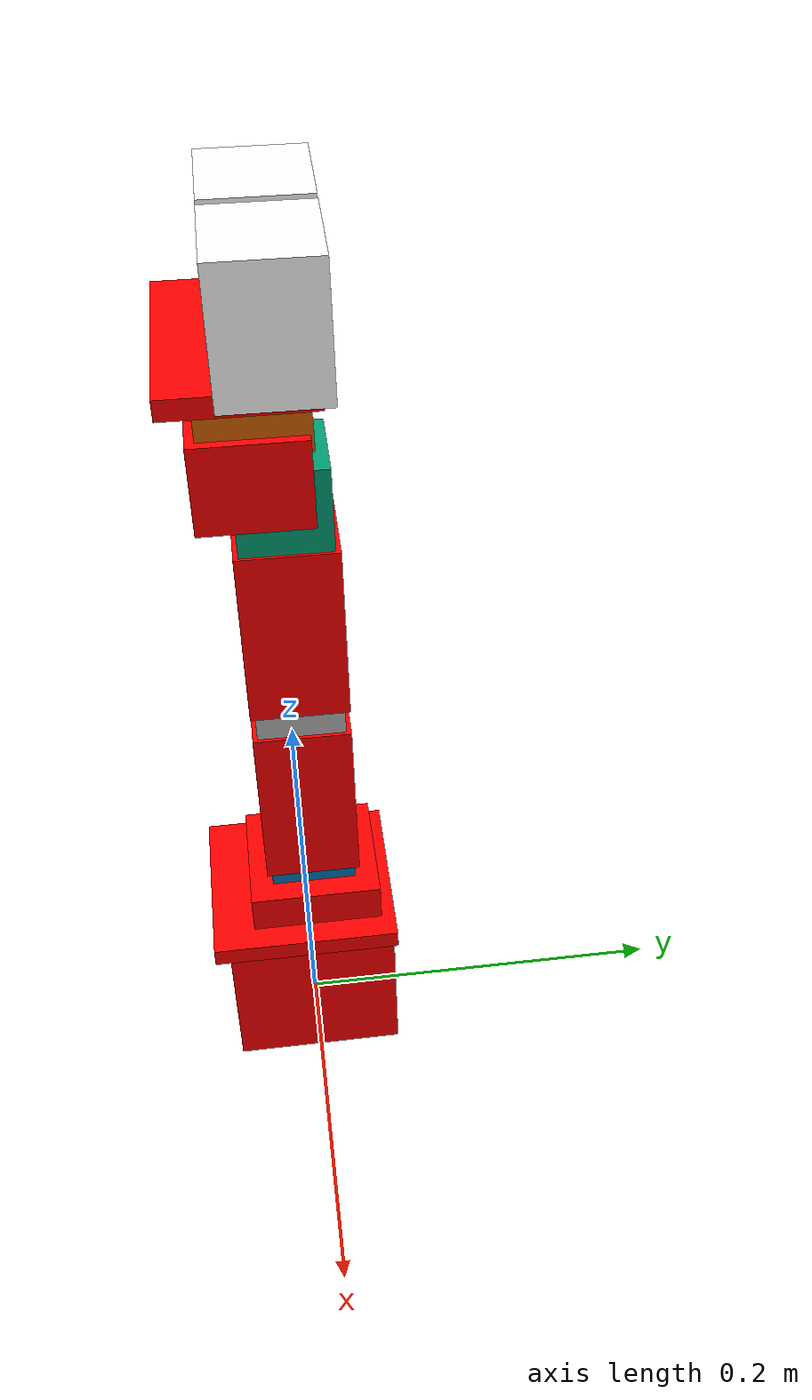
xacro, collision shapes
<?xml version="1.0"?>

<robot xmlns:xacro="http://www.ros.org/wiki/xacro" name="arm">

  <xacro:include filename="$(find arm_description)/urdf/arm_hardware_interface.xacro"/>

 <xacro:include filename="$(find arm_gazebo)/urdf/arm_camera.xacro"/>

  <material name="red">
    <color rgba="1 0 0 1"/>
  </material>

  <link name="world">
  </link>

  <joint name="base_j" type="fixed">
    <parent link="world"/>
    <child link="base_link"/>
    <origin xyz="0 0 0"/>
  </joint>

  <link name="base_link">
    <visual>
      <geometry>
        <mesh filename="file://$(find arm_description)/meshes/base_link.stl" scale="0.001 0.001 0.001"/>
      </geometry>
      <origin rpy="0 0 0" xyz="0 0 0.032"/>
      <material name="red"/>
    </visual>
    <inertial>
      <mass value="0.1"/>
      <inertia ixx="1.06682889e+08" ixy="0.0" ixz="0.0" iyy="9.92165844e+07" iyz="0.0" izz="1.26939175e+08"/>
    </inertial>
    <collision>
      <geometry>
        <box size="0.09 0.09 0.085" />
      </geometry>
      <origin rpy="0 0 0" xyz="0 0 0.042"/>
      <material name="red">
      <color rgba="0 0 0.5" xyz="0 0 0" />
    </material>
    </collision>
  </link>

  <joint name="base_1_2" type="fixed">
    <parent link="base_link"/>
    <child link="base_turn"/>
    <origin xyz="-0.0011 -0.011 0.082"/>
  </joint>

  <link name="base_turn">
    <visual>
      <geometry>
        <mesh filename="file://$(find arm_description)/meshes/base_turn.stl" scale="0.001 0.001 0.001"/>
      </geometry>
      <origin rpy="0 0 0" xyz="0 0 0"/>
      <material name="red"/>
    </visual>
    <inertial>
      <mass value="0.1"/>
      <inertia ixx="1.35223008e+07" ixy="0.0" ixz="0.0" iyy="8.13814925e+06" iyz="0.0" izz="2.14903814e+07"/>
    </inertial>
    <collision>
      <geometry>
        <box size="0.1 0.1 0.01" />
      </geometry>
      <origin rpy="0 0 0" xyz="-0.0009 0.008 0.002"/>
      <material name="red">
        <color rgba="0 0 0.5" xyz="0 0 0" />
      </material>
    </collision>
  </link>

  <joint name="j0" type="revolute">
    <parent link="base_turn"/>
    <child link="base_turn_rot"/>
    <origin xyz="-0.0 0.0155 0.013" rpy = "0 0 -1.57"/>
    <axis xyz="0 0 1" />
    <limit effort="300" velocity="0.1" lower="-2.57" upper="2.57"/>
  </joint>

  <link name="base_turn_rot">
    <visual>
      <geometry>
        <mesh filename="file://$(find arm_description)/meshes/base_turn_table_rot.stl" scale="0.001 0.001 0.001"/>
      </geometry>
      <material name="red"/>
    </visual>
    <inertial>
      <mass value="0.1"/>
      <inertia ixx="0.001" ixy="0.0" ixz="0.0" iyy="0.001" iyz="0.0" izz="0.001"/>
    </inertial>
    <collision>
      <geometry>
        <box size="0.07 0.07 0.024" />
      </geometry>
      <origin rpy="0 0 0" xyz="0 0 0.003"/>
      <material name="red">
        <color rgba="0 0 0.5" xyz="0 0 0" />
      </material>
    </collision>
  </link>

  <joint name="base_turn_rot_dyn2" type="fixed">
    <parent link="base_turn_rot"/>
    <child link="dyn2"/>
    <origin xyz="0 0 0.0387" rpy="0 1.57 1.57 "/>
  </joint>

  <link name="dyn2">
    <visual>
      <geometry>
        <mesh filename="file://$(find arm_description)/meshes/dyn.stl" scale="0.01 0.01 0.01"/>
      </geometry>
      <origin rpy="0 0 0" xyz="0 0 0"/>
    </visual>
    <inertial>
      <mass value="0.1"/>
      <inertia ixx="6.90013881e-05" ixy="0.0" ixz="0.0" iyy="1.24554875e-04" iyz="0.0" izz="1.04295793e-04"/>
    </inertial>
    <collision>
      <geometry>
        <box size="0.052 0.045 0.045" />
      </geometry>
      <origin rpy="0 0 0" xyz="0.014 0 0"/>
      <material name="red">
        <color rgba="0 0 0.5" xyz="0 0 0" />
      </material>
    </collision>
  </link>

  <joint name="j1" type="revolute">
    <parent link="dyn2"/>
    <child link="dyn2_r"/>
    <origin xyz="0 0 0.0" rpy="0 0 0"/>
    <axis xyz="0 0 1" />
    <limit effort="300" velocity="0.1" lower="-3.14" upper="3.14"/>
  </joint>

  <link name="dyn2_r">

  </link>

  <joint name="dyn2_f4" type="fixed">
    <parent link="dyn2_r"/>
    <child link="f4"/>
    <origin xyz="-0.047 0.0 -0.003" rpy="0 1.57 1.57"/>
  </joint>

  <link name="f4">
    <visual>
      <geometry>
        <mesh filename="file://$(find arm_description)/meshes/f4_n_f3.stl" scale="0.001 0.001 0.001"/>
      </geometry>
      <origin rpy="0 0 0" xyz="0 0 0"/>
      <material name="red"/>
    </visual>
    <inertial>
      <mass value="0.1"/>
      <inertia ixx="6.90013881e-05" ixy="0.0" ixz="0.0" iyy="1.24554875e-04" iyz="0.0" izz="1.04295793e-04"/>
    </inertial>
    <collision>
      <geometry>
        <box size="0.05 0.095 0.05" />
      </geometry>
      <origin rpy="0 0 0" xyz="-0.0035 -0.014 0"/>
      <material name="red">
        <color rgba="0 0 0.5" xyz="0 0 0" />
      </material>
    </collision>
  </link>

  <joint name="d4_dyn3" type="fixed">
    <parent link="f4"/>
    <child link="dyn3"/>
    <origin xyz="-0.004 0.0645 0 " rpy="-1.57 3.14 1.57"/>
  </joint>

  <link name="dyn3">
   <visual>
      <geometry>
        <mesh filename="file://$(find arm_description)/meshes/dyn.stl" scale="0.01 0.01 0.01"/>
      </geometry>
      <origin rpy="0 0 0" xyz="0 0 0"/>
    </visual>
    <inertial>
      <mass value="0.1"/>
      <inertia ixx="6.90013881e-05" ixy="0.0" ixz="0.0" iyy="1.24554875e-04" iyz="0.0" izz="1.04295793e-04"/>
    </inertial>
    <collision>
      <geometry>
        <box size="0.052 0.045 0.045" />
      </geometry>
      <origin rpy="0 0 0" xyz="0.014 0 0"/>
      <material name="red">
        <color rgba="0 0 0.5" xyz="0 0 0" />
      </material>
    </collision>
  </link>

  <joint name="j2" type="revolute">
    <parent link="dyn3"/>
    <child link="dyn3_r"/>
    <origin xyz="0 0 0.0" rpy="0 0 0"/>
    <axis xyz="0 0 1" />
    <limit effort="300" velocity="0.1" lower="-3.14" upper="3.14"/>
  </joint>

  <link name="dyn3_r">

  </link>

 <joint name="dyn3_f5" type="fixed">
    <parent link="dyn3_r"/>
    <child link="f5"/>
    <origin xyz="-0.046 -0.0 -0.002" rpy="1.57 1.57 3.1415 "/>
  </joint>

  <link name="f5">
    <visual>
      <geometry>
        <mesh filename="file://$(find arm_description)/meshes/f4_n_f3.stl" scale="0.001 0.001 0.001"/>
      </geometry>
      <origin rpy="0 0 0" xyz="0 0 0"/>
      <material name="red">
      </material>
    </visual>
    <inertial>
      <mass value="0.1"/>
      <inertia ixx="0.001" ixy="0.0" ixz="0.0" iyy="0.001" iyz="0.0" izz="0.001"/>
    </inertial>
    <collision>
      <geometry>
        <box size="0.05 0.095 0.05" />
      </geometry>
      <origin rpy="0 0 0" xyz="-0.003 -0.014 0"/>
      <material name="bianco">
        <color rgba="1.0 1.0 1.0 1.0" xyz="0 0 0" />
      </material>
    </collision>
  </link>

  <joint name="f5_dyn4" type="fixed">
    <parent link="f5"/>
    <child link="dyn4"/>
    <origin xyz="-0.004 0.065 -0.0" rpy="-1.57 3.1415 1.57 "/>
  </joint>

  <link name="dyn4">
    <visual>
      <geometry>
        <mesh filename="file://$(find arm_description)/meshes/dyn.stl" scale="0.01 0.01 0.01"/>
      </geometry>
      <origin rpy="0 0 0" xyz="0 0 0"/>
    </visual>
    <inertial>
      <mass value="0.1"/>
      <inertia ixx="6.90013881e-05" ixy="0.0" ixz="0.0" iyy="1.24554875e-04" iyz="0.0" izz="1.04295793e-04"/>
    </inertial>
    <collision>
      <geometry>
        <box size="0.052 0.045 0.045" />
      </geometry>
      <origin rpy="0 0 0" xyz="0.014 0 0"/>
      <material name="red">
        <color rgba="0 0 0.5" xyz="0 0 0" />
      </material>
    </collision>
  </link>

  <joint name="j3" type="revolute">
    <parent link="dyn4"/>
    <child link="dyn4_r"/>
    <origin xyz="0 0 0.0" rpy="0 0 0"/>
    <axis xyz="0 0 1" />
    <limit effort="300" velocity="0.1" lower="-3.14" upper="3.14"/>
  </joint>

  <link name="dyn4_r">

  </link>

  <joint name="f5_wrist" type="fixed">
    <parent link="dyn4_r"/>
    <child link="wrist"/>
    <origin xyz="-0.017 -0.013 0.003" rpy="1.57 1.57 -1.57"/>
  </joint>

  <link name="wrist">
    <visual>
      <geometry>
        <mesh filename="file://$(find arm_description)/meshes/wrist.stl" scale="0.001 0.001 0.001"/>
      </geometry>
      <origin rpy="0 0 0" xyz="0 0 0"/>
      <material name="red"/>
    </visual>
    <inertial>
      <mass value="0.1"/>
      <inertia ixx="6.90013881e-05" ixy="0.0" ixz="0.0" iyy="1.24554875e-04" iyz="0.0" izz="1.04295793e-04"/>
    </inertial>
    <collision>
      <geometry>
        <box size="0.055 0.055 0.045" />
      </geometry>
      <origin rpy="0 0 0" xyz="0.002 0 -0.009"/>
      <material name="red">
        <color rgba="0 0 0.5" xyz="0 0 0" />
      </material>
    </collision>
  </link>

  <joint name="wrist_dyn5" type="fixed">
    <parent link="wrist"/>
    <child link="dyn5"/>
    <origin xyz="0.0038 -0.013 0.0275" rpy="0 0 1.57"/>
  </joint>

  <link name="dyn5">
    <visual>
      <geometry>
        <mesh filename="file://$(find arm_description)/meshes/dyn.stl" scale="0.01 0.01 0.01"/>
      </geometry>
      <origin rpy="0 0 0" xyz="0 0 0"/>
    </visual>
    <inertial>
      <mass value="0.1"/>
      <inertia ixx="6.90013881e-05" ixy="0.0" ixz="0.0" iyy="1.24554875e-04" iyz="0.0" izz="1.04295793e-04"/>
    </inertial>
    <collision>
      <geometry>
        <box size="0.052 0.045 0.045 " />
      </geometry>
      <origin rpy="0 0 0" xyz="0.01 0.002 0"/>
      <material name="red">
        <color rgba="0 0 0.5" xyz="0 0 0" />
      </material>
    </collision>
  </link>

  <joint name="dyn5_dyn5_r" type="fixed">
    <parent link="dyn5"/>
    <child link="dyn5_r"/>
    <origin xyz="0 0 0.0" rpy="0 0 0"/>
    <axis xyz="0 0 1" />
    <limit effort="300" velocity="0.18" lower="-3.14" upper="3.14"/>
  </joint>

  <link name="dyn5_r">

  </link>

  <joint name="wrist_rotate_dyn5" type="fixed">
    <parent link="dyn5_r"/>
    <child link="crawer_base"/>
    <origin xyz="0.015 0 0.019" rpy="0 0 1.57"/>
  </joint>

  <link name="crawer_base">
    <visual>
      <geometry>
        <mesh filename="file://$(find arm_description)/meshes/the_crawer_base.stl" scale="0.001 0.001 0.001"/>
      </geometry>
      <origin rpy="0 0 0" xyz="0 0 0"/>
      <material name="red"/>
    </visual>
    <inertial>
      <mass value="0.1"/>
      <inertia ixx="6.90013881e-05" ixy="0.0" ixz="0.0" iyy="1.24554875e-04" iyz="0.0" izz="1.04295793e-04"/>
    </inertial>
    <collision>
      <geometry>
        <box size="0.11 0.07 0.01 " />
      </geometry>
      <origin rpy="0 0 0" xyz="0 0 0"/>
      <material name="red">
        <color rgba="0 0 0.5" xyz="0 0 0" />
      </material>
    </collision>
  </link>

  <joint name="crawer_base_crawer_left" type="fixed">
    <parent link="crawer_base"/>
    <child link="crawer_left"/>
    <origin xyz="-0.03 0.015 0.01" rpy="0 -1.57 0"/>
  </joint>

  <link name="crawer_left">
    <visual>
      <geometry>
        <mesh filename="file://$(find arm_description)/meshes/the_crawer.stl" scale="0.001 0.001 0.001"/>
      </geometry>
      <origin rpy="0 0 0" xyz="0 0 0"/>
      <material name="white">
        <color rgba="1 1 1 1"/>
      </material>
    </visual>
    <inertial>
      <mass value="0.1"/>
      <inertia ixx="6.90013881e-05" ixy="0.0" ixz="0.0" iyy="1.24554875e-04" iyz="0.0" izz="1.04295793e-04"/>
    </inertial>
    <collision>
      <geometry>
        <box size="0.065 0.05 0.055" />
      </geometry>
      <origin rpy="0 0 0" xyz="0.02 0 0"/>
      <material name="white">
        <color rgba="1 1 1 1" />
      </material>
    </collision>
  </link>

  <joint name="crawer_base_crawer_right" type="fixed">
    <parent link="crawer_base"/>
    <child link="crawer_right"/>
    <origin xyz="0.03 0.015 0.01" rpy="3.1415 -1.57 0"/>
  </joint>

  <link name="crawer_right">
    <visual>
      <geometry>
        <mesh filename="file://$(find arm_description)/meshes/the_crawer.stl" scale="0.001 0.001 0.001"/>
      </geometry>
      <origin rpy="0 0 0" xyz="0 0 0"/>
      <material name="white">
        <color rgba="1 1 1 1"/>
      </material>
    </visual>
    <inertial>
      <mass value="0.1"/>
      <inertia ixx="6.90013881e-05" ixy="0.0" ixz="0.0" iyy="1.24554875e-04" iyz="0.0" izz="1.04295793e-04"/>
    </inertial>
    <collision>
      <geometry>
        <box size="0.065 0.05 0.055" />
      </geometry>
      <origin rpy="0 0 0" xyz="0.02 0 0"/>
      <material name="white">
        <color rgba="1 1 1 1"/>
      </material>
    </collision>
  </link>

  <joint name="camera_joint" type="fixed">
      <parent link="base_link"/>
      <child link="camera_link"/>
      <origin xyz="0.0 0 0.017" rpy="-1.57 -1.57 0"/>
  </joint>

  <link name="camera_link">
    <visual>
      <geometry>
        <box size="0.03 0.03 0.03"/>
      </geometry>
      <material name="white"/>
    </visual>
  </link>

  <gazebo>
    <plugin filename="ign_ros2_control-system" name="ign_ros2_control::IgnitionROS2ControlPlugin">
      <parameters>$(find arm_control)/config/arm_control.yaml</parameters>
      <controller_manager_prefix_node_name>controller_manager</controller_manager_prefix_node_name>
    </plugin>
  </gazebo>

  <ros2_control name="IgnitionSystem" type="system">

    <hardware>
      <plugin>ign_ros2_control/IgnitionSystem</plugin>
    </hardware>

    <xacro:PositionJointInterface name="j0" initial_pos="0"/>
    <xacro:PositionJointInterface name="j1" initial_pos="0.5"/>
    <xacro:PositionJointInterface name="j2" initial_pos="1"/>
    <xacro:PositionJointInterface name="j3" initial_pos="0.5"/>
  </ros2_control>

</robot>
